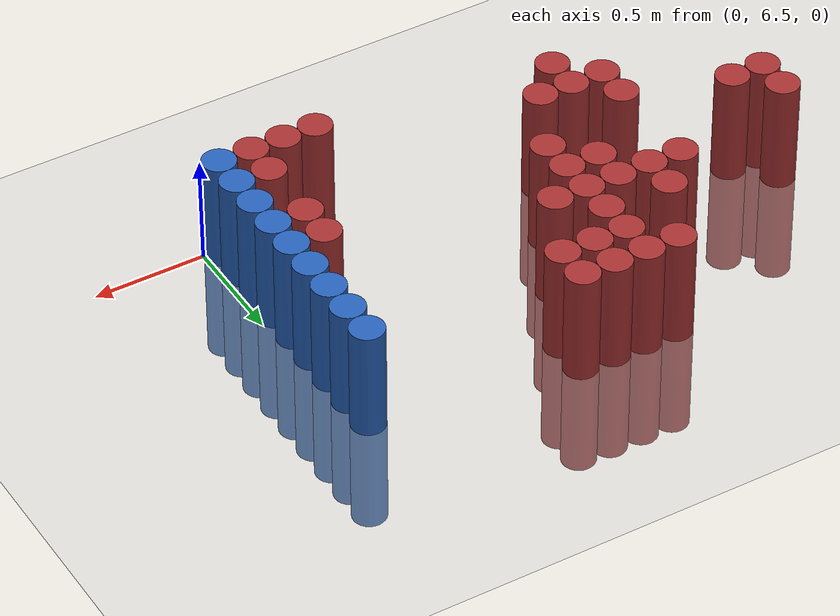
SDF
<sdf version="1.6">
 <world name="default">
  <model name="ground_plane">
   <static>1</static>
   <link name="link">
    <collision name="collision">
     <geometry><plane><normal>0 0 1</normal><size>100 100</size></plane></geometry>
     <surface><friction><ode><mu>100</mu><mu2>50</mu2></ode></friction></surface>
    </collision>
    <visual name="visual">
     <cast_shadows>0</cast_shadows>
     <geometry><plane><normal>0 0 1</normal><size>100 100</size></plane></geometry>
     <material>
      <script><uri>file://media/materials/scripts/gazebo.material</uri><name>Gazebo/Grey</name></script>
     </material>
    </visual>
   </link>
  </model>
  <model name="unit_cylinder_211">
   <static>1</static>
   <pose>-2.325000 7.125000 0.000000 0.000000 0.000000 0.000000</pose>
   <link name="link">
    <inertial>
     <mass>1</mass>
     <inertia><ixx>0.145833</ixx><ixy>0</ixy><ixz>0</ixz><iyy>0.145833</iyy><iyz>0</iyz><izz>0.125</izz></inertia>
    </inertial>
    <collision name="collision">
     <geometry><cylinder><radius>0.075000</radius><length>1</length></cylinder></geometry>
    </collision>
    <visual name="visual">
     <geometry><cylinder><radius>0.075000</radius><length>1</length></cylinder></geometry>
     <material>
      <ambient>0.648000 0.192000 0.192000 1</ambient>
      <diffuse>0.648000 0.192000 0.192000 1</diffuse>
     </material>
     <material>
      <script><name>Gazebo/Grey</name><uri>file://media/materials/scripts/gazebo.material</uri></script>
     </material>
    </visual>
    <sensor name="sensor_contact" type="contact"><contact><collision>collision</collision></contact></sensor>
   </link>
   <plugin filename="gz-sim-touchplugin-system" name="gz::sim::systems::TouchPlugin">
    <target>robot</target>
    <namespace>robot</namespace>
    <time>0.001</time>
    <enabled>true</enabled>
   </plugin>
  </model>
  <model name="unit_cylinder_212">
   <static>1</static>
   <pose>-2.325000 7.275000 0.000000 0.000000 0.000000 0.000000</pose>
   <link name="link">
    <inertial>
     <mass>1</mass>
     <inertia><ixx>0.145833</ixx><ixy>0</ixy><ixz>0</ixz><iyy>0.145833</iyy><iyz>0</iyz><izz>0.125</izz></inertia>
    </inertial>
    <collision name="collision">
     <geometry><cylinder><radius>0.075000</radius><length>1</length></cylinder></geometry>
    </collision>
    <visual name="visual">
     <geometry><cylinder><radius>0.075000</radius><length>1</length></cylinder></geometry>
     <material>
      <ambient>0.648000 0.192000 0.192000 1</ambient>
      <diffuse>0.648000 0.192000 0.192000 1</diffuse>
     </material>
     <material>
      <script><name>Gazebo/Grey</name><uri>file://media/materials/scripts/gazebo.material</uri></script>
     </material>
    </visual>
    <sensor name="sensor_contact" type="contact"><contact><collision>collision</collision></contact></sensor>
   </link>
   <plugin filename="gz-sim-touchplugin-system" name="gz::sim::systems::TouchPlugin">
    <target>robot</target>
    <namespace>robot</namespace>
    <time>0.001</time>
    <enabled>true</enabled>
   </plugin>
  </model>
  <model name="unit_cylinder_218">
   <static>1</static>
   <pose>-2.175000 7.125000 0.000000 0.000000 0.000000 0.000000</pose>
   <link name="link">
    <inertial>
     <mass>1</mass>
     <inertia><ixx>0.145833</ixx><ixy>0</ixy><ixz>0</ixz><iyy>0.145833</iyy><iyz>0</iyz><izz>0.125</izz></inertia>
    </inertial>
    <collision name="collision">
     <geometry><cylinder><radius>0.075000</radius><length>1</length></cylinder></geometry>
    </collision>
    <visual name="visual">
     <geometry><cylinder><radius>0.075000</radius><length>1</length></cylinder></geometry>
     <material>
      <ambient>0.648000 0.192000 0.192000 1</ambient>
      <diffuse>0.648000 0.192000 0.192000 1</diffuse>
     </material>
     <material>
      <script><name>Gazebo/Grey</name><uri>file://media/materials/scripts/gazebo.material</uri></script>
     </material>
    </visual>
    <sensor name="sensor_contact" type="contact"><contact><collision>collision</collision></contact></sensor>
   </link>
   <plugin filename="gz-sim-touchplugin-system" name="gz::sim::systems::TouchPlugin">
    <target>robot</target>
    <namespace>robot</namespace>
    <time>0.001</time>
    <enabled>true</enabled>
   </plugin>
  </model>
  <model name="unit_cylinder_234">
   <static>1</static>
   <pose>-1.725000 6.825000 0.000000 0.000000 0.000000 0.000000</pose>
   <link name="link">
    <inertial>
     <mass>1</mass>
     <inertia><ixx>0.145833</ixx><ixy>0</ixy><ixz>0</ixz><iyy>0.145833</iyy><iyz>0</iyz><izz>0.125</izz></inertia>
    </inertial>
    <collision name="collision">
     <geometry><cylinder><radius>0.075000</radius><length>1</length></cylinder></geometry>
    </collision>
    <visual name="visual">
     <geometry><cylinder><radius>0.075000</radius><length>1</length></cylinder></geometry>
     <material>
      <ambient>0.648000 0.192000 0.192000 1</ambient>
      <diffuse>0.648000 0.192000 0.192000 1</diffuse>
     </material>
     <material>
      <script><name>Gazebo/Grey</name><uri>file://media/materials/scripts/gazebo.material</uri></script>
     </material>
    </visual>
    <sensor name="sensor_contact" type="contact"><contact><collision>collision</collision></contact></sensor>
   </link>
   <plugin filename="gz-sim-touchplugin-system" name="gz::sim::systems::TouchPlugin">
    <target>robot</target>
    <namespace>robot</namespace>
    <time>0.001</time>
    <enabled>true</enabled>
   </plugin>
  </model>
  <model name="unit_cylinder_235">
   <static>1</static>
   <pose>-1.725000 6.975000 0.000000 0.000000 0.000000 0.000000</pose>
   <link name="link">
    <inertial>
     <mass>1</mass>
     <inertia><ixx>0.145833</ixx><ixy>0</ixy><ixz>0</ixz><iyy>0.145833</iyy><iyz>0</iyz><izz>0.125</izz></inertia>
    </inertial>
    <collision name="collision">
     <geometry><cylinder><radius>0.075000</radius><length>1</length></cylinder></geometry>
    </collision>
    <visual name="visual">
     <geometry><cylinder><radius>0.075000</radius><length>1</length></cylinder></geometry>
     <material>
      <ambient>0.648000 0.192000 0.192000 1</ambient>
      <diffuse>0.648000 0.192000 0.192000 1</diffuse>
     </material>
     <material>
      <script><name>Gazebo/Grey</name><uri>file://media/materials/scripts/gazebo.material</uri></script>
     </material>
    </visual>
    <sensor name="sensor_contact" type="contact"><contact><collision>collision</collision></contact></sensor>
   </link>
   <plugin filename="gz-sim-touchplugin-system" name="gz::sim::systems::TouchPlugin">
    <target>robot</target>
    <namespace>robot</namespace>
    <time>0.001</time>
    <enabled>true</enabled>
   </plugin>
  </model>
  <model name="unit_cylinder_236">
   <static>1</static>
   <pose>-1.725000 7.425000 0.000000 0.000000 0.000000 0.000000</pose>
   <link name="link">
    <inertial>
     <mass>1</mass>
     <inertia><ixx>0.145833</ixx><ixy>0</ixy><ixz>0</ixz><iyy>0.145833</iyy><iyz>0</iyz><izz>0.125</izz></inertia>
    </inertial>
    <collision name="collision">
     <geometry><cylinder><radius>0.075000</radius><length>1</length></cylinder></geometry>
    </collision>
    <visual name="visual">
     <geometry><cylinder><radius>0.075000</radius><length>1</length></cylinder></geometry>
     <material>
      <ambient>0.648000 0.192000 0.192000 1</ambient>
      <diffuse>0.648000 0.192000 0.192000 1</diffuse>
     </material>
     <material>
      <script><name>Gazebo/Grey</name><uri>file://media/materials/scripts/gazebo.material</uri></script>
     </material>
    </visual>
    <sensor name="sensor_contact" type="contact"><contact><collision>collision</collision></contact></sensor>
   </link>
   <plugin filename="gz-sim-touchplugin-system" name="gz::sim::systems::TouchPlugin">
    <target>robot</target>
    <namespace>robot</namespace>
    <time>0.001</time>
    <enabled>true</enabled>
   </plugin>
  </model>
  <model name="unit_cylinder_238">
   <static>1</static>
   <pose>-1.575000 6.675000 0.000000 0.000000 0.000000 0.000000</pose>
   <link name="link">
    <inertial>
     <mass>1</mass>
     <inertia><ixx>0.145833</ixx><ixy>0</ixy><ixz>0</ixz><iyy>0.145833</iyy><iyz>0</iyz><izz>0.125</izz></inertia>
    </inertial>
    <collision name="collision">
     <geometry><cylinder><radius>0.075000</radius><length>1</length></cylinder></geometry>
    </collision>
    <visual name="visual">
     <geometry><cylinder><radius>0.075000</radius><length>1</length></cylinder></geometry>
     <material>
      <ambient>0.648000 0.192000 0.192000 1</ambient>
      <diffuse>0.648000 0.192000 0.192000 1</diffuse>
     </material>
     <material>
      <script><name>Gazebo/Grey</name><uri>file://media/materials/scripts/gazebo.material</uri></script>
     </material>
    </visual>
    <sensor name="sensor_contact" type="contact"><contact><collision>collision</collision></contact></sensor>
   </link>
   <plugin filename="gz-sim-touchplugin-system" name="gz::sim::systems::TouchPlugin">
    <target>robot</target>
    <namespace>robot</namespace>
    <time>0.001</time>
    <enabled>true</enabled>
   </plugin>
  </model>
  <model name="unit_cylinder_239">
   <static>1</static>
   <pose>-1.575000 6.825000 0.000000 0.000000 0.000000 0.000000</pose>
   <link name="link">
    <inertial>
     <mass>1</mass>
     <inertia><ixx>0.145833</ixx><ixy>0</ixy><ixz>0</ixz><iyy>0.145833</iyy><iyz>0</iyz><izz>0.125</izz></inertia>
    </inertial>
    <collision name="collision">
     <geometry><cylinder><radius>0.075000</radius><length>1</length></cylinder></geometry>
    </collision>
    <visual name="visual">
     <geometry><cylinder><radius>0.075000</radius><length>1</length></cylinder></geometry>
     <material>
      <ambient>0.648000 0.192000 0.192000 1</ambient>
      <diffuse>0.648000 0.192000 0.192000 1</diffuse>
     </material>
     <material>
      <script><name>Gazebo/Grey</name><uri>file://media/materials/scripts/gazebo.material</uri></script>
     </material>
    </visual>
    <sensor name="sensor_contact" type="contact"><contact><collision>collision</collision></contact></sensor>
   </link>
   <plugin filename="gz-sim-touchplugin-system" name="gz::sim::systems::TouchPlugin">
    <target>robot</target>
    <namespace>robot</namespace>
    <time>0.001</time>
    <enabled>true</enabled>
   </plugin>
  </model>
  <model name="unit_cylinder_240">
   <static>1</static>
   <pose>-1.575000 7.425000 0.000000 0.000000 0.000000 0.000000</pose>
   <link name="link">
    <inertial>
     <mass>1</mass>
     <inertia><ixx>0.145833</ixx><ixy>0</ixy><ixz>0</ixz><iyy>0.145833</iyy><iyz>0</iyz><izz>0.125</izz></inertia>
    </inertial>
    <collision name="collision">
     <geometry><cylinder><radius>0.075000</radius><length>1</length></cylinder></geometry>
    </collision>
    <visual name="visual">
     <geometry><cylinder><radius>0.075000</radius><length>1</length></cylinder></geometry>
     <material>
      <ambient>0.648000 0.192000 0.192000 1</ambient>
      <diffuse>0.648000 0.192000 0.192000 1</diffuse>
     </material>
     <material>
      <script><name>Gazebo/Grey</name><uri>file://media/materials/scripts/gazebo.material</uri></script>
     </material>
    </visual>
    <sensor name="sensor_contact" type="contact"><contact><collision>collision</collision></contact></sensor>
   </link>
   <plugin filename="gz-sim-touchplugin-system" name="gz::sim::systems::TouchPlugin">
    <target>robot</target>
    <namespace>robot</namespace>
    <time>0.001</time>
    <enabled>true</enabled>
   </plugin>
  </model>
  <model name="unit_cylinder_241">
   <static>1</static>
   <pose>-1.575000 7.575000 0.000000 0.000000 0.000000 0.000000</pose>
   <link name="link">
    <inertial>
     <mass>1</mass>
     <inertia><ixx>0.145833</ixx><ixy>0</ixy><ixz>0</ixz><iyy>0.145833</iyy><iyz>0</iyz><izz>0.125</izz></inertia>
    </inertial>
    <collision name="collision">
     <geometry><cylinder><radius>0.075000</radius><length>1</length></cylinder></geometry>
    </collision>
    <visual name="visual">
     <geometry><cylinder><radius>0.075000</radius><length>1</length></cylinder></geometry>
     <material>
      <ambient>0.648000 0.192000 0.192000 1</ambient>
      <diffuse>0.648000 0.192000 0.192000 1</diffuse>
     </material>
     <material>
      <script><name>Gazebo/Grey</name><uri>file://media/materials/scripts/gazebo.material</uri></script>
     </material>
    </visual>
    <sensor name="sensor_contact" type="contact"><contact><collision>collision</collision></contact></sensor>
   </link>
   <plugin filename="gz-sim-touchplugin-system" name="gz::sim::systems::TouchPlugin">
    <target>robot</target>
    <namespace>robot</namespace>
    <time>0.001</time>
    <enabled>true</enabled>
   </plugin>
  </model>
  <model name="unit_cylinder_244">
   <static>1</static>
   <pose>-1.425000 6.825000 0.000000 0.000000 0.000000 0.000000</pose>
   <link name="link">
    <inertial>
     <mass>1</mass>
     <inertia><ixx>0.145833</ixx><ixy>0</ixy><ixz>0</ixz><iyy>0.145833</iyy><iyz>0</iyz><izz>0.125</izz></inertia>
    </inertial>
    <collision name="collision">
     <geometry><cylinder><radius>0.075000</radius><length>1</length></cylinder></geometry>
    </collision>
    <visual name="visual">
     <geometry><cylinder><radius>0.075000</radius><length>1</length></cylinder></geometry>
     <material>
      <ambient>0.648000 0.192000 0.192000 1</ambient>
      <diffuse>0.648000 0.192000 0.192000 1</diffuse>
     </material>
     <material>
      <script><name>Gazebo/Grey</name><uri>file://media/materials/scripts/gazebo.material</uri></script>
     </material>
    </visual>
    <sensor name="sensor_contact" type="contact"><contact><collision>collision</collision></contact></sensor>
   </link>
   <plugin filename="gz-sim-touchplugin-system" name="gz::sim::systems::TouchPlugin">
    <target>robot</target>
    <namespace>robot</namespace>
    <time>0.001</time>
    <enabled>true</enabled>
   </plugin>
  </model>
  <model name="unit_cylinder_245">
   <static>1</static>
   <pose>-1.425000 7.275000 0.000000 0.000000 0.000000 0.000000</pose>
   <link name="link">
    <inertial>
     <mass>1</mass>
     <inertia><ixx>0.145833</ixx><ixy>0</ixy><ixz>0</ixz><iyy>0.145833</iyy><iyz>0</iyz><izz>0.125</izz></inertia>
    </inertial>
    <collision name="collision">
     <geometry><cylinder><radius>0.075000</radius><length>1</length></cylinder></geometry>
    </collision>
    <visual name="visual">
     <geometry><cylinder><radius>0.075000</radius><length>1</length></cylinder></geometry>
     <material>
      <ambient>0.648000 0.192000 0.192000 1</ambient>
      <diffuse>0.648000 0.192000 0.192000 1</diffuse>
     </material>
     <material>
      <script><name>Gazebo/Grey</name><uri>file://media/materials/scripts/gazebo.material</uri></script>
     </material>
    </visual>
    <sensor name="sensor_contact" type="contact"><contact><collision>collision</collision></contact></sensor>
   </link>
   <plugin filename="gz-sim-touchplugin-system" name="gz::sim::systems::TouchPlugin">
    <target>robot</target>
    <namespace>robot</namespace>
    <time>0.001</time>
    <enabled>true</enabled>
   </plugin>
  </model>
  <model name="unit_cylinder_246">
   <static>1</static>
   <pose>-1.425000 7.425000 0.000000 0.000000 0.000000 0.000000</pose>
   <link name="link">
    <inertial>
     <mass>1</mass>
     <inertia><ixx>0.145833</ixx><ixy>0</ixy><ixz>0</ixz><iyy>0.145833</iyy><iyz>0</iyz><izz>0.125</izz></inertia>
    </inertial>
    <collision name="collision">
     <geometry><cylinder><radius>0.075000</radius><length>1</length></cylinder></geometry>
    </collision>
    <visual name="visual">
     <geometry><cylinder><radius>0.075000</radius><length>1</length></cylinder></geometry>
     <material>
      <ambient>0.648000 0.192000 0.192000 1</ambient>
      <diffuse>0.648000 0.192000 0.192000 1</diffuse>
     </material>
     <material>
      <script><name>Gazebo/Grey</name><uri>file://media/materials/scripts/gazebo.material</uri></script>
     </material>
    </visual>
    <sensor name="sensor_contact" type="contact"><contact><collision>collision</collision></contact></sensor>
   </link>
   <plugin filename="gz-sim-touchplugin-system" name="gz::sim::systems::TouchPlugin">
    <target>robot</target>
    <namespace>robot</namespace>
    <time>0.001</time>
    <enabled>true</enabled>
   </plugin>
  </model>
  <model name="unit_cylinder_247">
   <static>1</static>
   <pose>-1.425000 7.875000 0.000000 0.000000 0.000000 0.000000</pose>
   <link name="link">
    <inertial>
     <mass>1</mass>
     <inertia><ixx>0.145833</ixx><ixy>0</ixy><ixz>0</ixz><iyy>0.145833</iyy><iyz>0</iyz><izz>0.125</izz></inertia>
    </inertial>
    <collision name="collision">
     <geometry><cylinder><radius>0.075000</radius><length>1</length></cylinder></geometry>
    </collision>
    <visual name="visual">
     <geometry><cylinder><radius>0.075000</radius><length>1</length></cylinder></geometry>
     <material>
      <ambient>0.648000 0.192000 0.192000 1</ambient>
      <diffuse>0.648000 0.192000 0.192000 1</diffuse>
     </material>
     <material>
      <script><name>Gazebo/Grey</name><uri>file://media/materials/scripts/gazebo.material</uri></script>
     </material>
    </visual>
    <sensor name="sensor_contact" type="contact"><contact><collision>collision</collision></contact></sensor>
   </link>
   <plugin filename="gz-sim-touchplugin-system" name="gz::sim::systems::TouchPlugin">
    <target>robot</target>
    <namespace>robot</namespace>
    <time>0.001</time>
    <enabled>true</enabled>
   </plugin>
  </model>
  <model name="unit_cylinder_250">
   <static>1</static>
   <pose>-1.275000 7.125000 0.000000 0.000000 0.000000 0.000000</pose>
   <link name="link">
    <inertial>
     <mass>1</mass>
     <inertia><ixx>0.145833</ixx><ixy>0</ixy><ixz>0</ixz><iyy>0.145833</iyy><iyz>0</iyz><izz>0.125</izz></inertia>
    </inertial>
    <collision name="collision">
     <geometry><cylinder><radius>0.075000</radius><length>1</length></cylinder></geometry>
    </collision>
    <visual name="visual">
     <geometry><cylinder><radius>0.075000</radius><length>1</length></cylinder></geometry>
     <material>
      <ambient>0.648000 0.192000 0.192000 1</ambient>
      <diffuse>0.648000 0.192000 0.192000 1</diffuse>
     </material>
     <material>
      <script><name>Gazebo/Grey</name><uri>file://media/materials/scripts/gazebo.material</uri></script>
     </material>
    </visual>
    <sensor name="sensor_contact" type="contact"><contact><collision>collision</collision></contact></sensor>
   </link>
   <plugin filename="gz-sim-touchplugin-system" name="gz::sim::systems::TouchPlugin">
    <target>robot</target>
    <namespace>robot</namespace>
    <time>0.001</time>
    <enabled>true</enabled>
   </plugin>
  </model>
  <model name="unit_cylinder_251">
   <static>1</static>
   <pose>-1.275000 7.275000 0.000000 0.000000 0.000000 0.000000</pose>
   <link name="link">
    <inertial>
     <mass>1</mass>
     <inertia><ixx>0.145833</ixx><ixy>0</ixy><ixz>0</ixz><iyy>0.145833</iyy><iyz>0</iyz><izz>0.125</izz></inertia>
    </inertial>
    <collision name="collision">
     <geometry><cylinder><radius>0.075000</radius><length>1</length></cylinder></geometry>
    </collision>
    <visual name="visual">
     <geometry><cylinder><radius>0.075000</radius><length>1</length></cylinder></geometry>
     <material>
      <ambient>0.648000 0.192000 0.192000 1</ambient>
      <diffuse>0.648000 0.192000 0.192000 1</diffuse>
     </material>
     <material>
      <script><name>Gazebo/Grey</name><uri>file://media/materials/scripts/gazebo.material</uri></script>
     </material>
    </visual>
    <sensor name="sensor_contact" type="contact"><contact><collision>collision</collision></contact></sensor>
   </link>
   <plugin filename="gz-sim-touchplugin-system" name="gz::sim::systems::TouchPlugin">
    <target>robot</target>
    <namespace>robot</namespace>
    <time>0.001</time>
    <enabled>true</enabled>
   </plugin>
  </model>
  <model name="unit_cylinder_252">
   <static>1</static>
   <pose>-1.275000 7.425000 0.000000 0.000000 0.000000 0.000000</pose>
   <link name="link">
    <inertial>
     <mass>1</mass>
     <inertia><ixx>0.145833</ixx><ixy>0</ixy><ixz>0</ixz><iyy>0.145833</iyy><iyz>0</iyz><izz>0.125</izz></inertia>
    </inertial>
    <collision name="collision">
     <geometry><cylinder><radius>0.075000</radius><length>1</length></cylinder></geometry>
    </collision>
    <visual name="visual">
     <geometry><cylinder><radius>0.075000</radius><length>1</length></cylinder></geometry>
     <material>
      <ambient>0.648000 0.192000 0.192000 1</ambient>
      <diffuse>0.648000 0.192000 0.192000 1</diffuse>
     </material>
     <material>
      <script><name>Gazebo/Grey</name><uri>file://media/materials/scripts/gazebo.material</uri></script>
     </material>
    </visual>
    <sensor name="sensor_contact" type="contact"><contact><collision>collision</collision></contact></sensor>
   </link>
   <plugin filename="gz-sim-touchplugin-system" name="gz::sim::systems::TouchPlugin">
    <target>robot</target>
    <namespace>robot</namespace>
    <time>0.001</time>
    <enabled>true</enabled>
   </plugin>
  </model>
  <model name="unit_cylinder_253">
   <static>1</static>
   <pose>-1.275000 7.575000 0.000000 0.000000 0.000000 0.000000</pose>
   <link name="link">
    <inertial>
     <mass>1</mass>
     <inertia><ixx>0.145833</ixx><ixy>0</ixy><ixz>0</ixz><iyy>0.145833</iyy><iyz>0</iyz><izz>0.125</izz></inertia>
    </inertial>
    <collision name="collision">
     <geometry><cylinder><radius>0.075000</radius><length>1</length></cylinder></geometry>
    </collision>
    <visual name="visual">
     <geometry><cylinder><radius>0.075000</radius><length>1</length></cylinder></geometry>
     <material>
      <ambient>0.648000 0.192000 0.192000 1</ambient>
      <diffuse>0.648000 0.192000 0.192000 1</diffuse>
     </material>
     <material>
      <script><name>Gazebo/Grey</name><uri>file://media/materials/scripts/gazebo.material</uri></script>
     </material>
    </visual>
    <sensor name="sensor_contact" type="contact"><contact><collision>collision</collision></contact></sensor>
   </link>
   <plugin filename="gz-sim-touchplugin-system" name="gz::sim::systems::TouchPlugin">
    <target>robot</target>
    <namespace>robot</namespace>
    <time>0.001</time>
    <enabled>true</enabled>
   </plugin>
  </model>
  <model name="unit_cylinder_254">
   <static>1</static>
   <pose>-1.275000 7.725000 0.000000 0.000000 0.000000 0.000000</pose>
   <link name="link">
    <inertial>
     <mass>1</mass>
     <inertia><ixx>0.145833</ixx><ixy>0</ixy><ixz>0</ixz><iyy>0.145833</iyy><iyz>0</iyz><izz>0.125</izz></inertia>
    </inertial>
    <collision name="collision">
     <geometry><cylinder><radius>0.075000</radius><length>1</length></cylinder></geometry>
    </collision>
    <visual name="visual">
     <geometry><cylinder><radius>0.075000</radius><length>1</length></cylinder></geometry>
     <material>
      <ambient>0.648000 0.192000 0.192000 1</ambient>
      <diffuse>0.648000 0.192000 0.192000 1</diffuse>
     </material>
     <material>
      <script><name>Gazebo/Grey</name><uri>file://media/materials/scripts/gazebo.material</uri></script>
     </material>
    </visual>
    <sensor name="sensor_contact" type="contact"><contact><collision>collision</collision></contact></sensor>
   </link>
   <plugin filename="gz-sim-touchplugin-system" name="gz::sim::systems::TouchPlugin">
    <target>robot</target>
    <namespace>robot</namespace>
    <time>0.001</time>
    <enabled>true</enabled>
   </plugin>
  </model>
  <model name="unit_cylinder_255">
   <static>1</static>
   <pose>-1.275000 7.875000 0.000000 0.000000 0.000000 0.000000</pose>
   <link name="link">
    <inertial>
     <mass>1</mass>
     <inertia><ixx>0.145833</ixx><ixy>0</ixy><ixz>0</ixz><iyy>0.145833</iyy><iyz>0</iyz><izz>0.125</izz></inertia>
    </inertial>
    <collision name="collision">
     <geometry><cylinder><radius>0.075000</radius><length>1</length></cylinder></geometry>
    </collision>
    <visual name="visual">
     <geometry><cylinder><radius>0.075000</radius><length>1</length></cylinder></geometry>
     <material>
      <ambient>0.648000 0.192000 0.192000 1</ambient>
      <diffuse>0.648000 0.192000 0.192000 1</diffuse>
     </material>
     <material>
      <script><name>Gazebo/Grey</name><uri>file://media/materials/scripts/gazebo.material</uri></script>
     </material>
    </visual>
    <sensor name="sensor_contact" type="contact"><contact><collision>collision</collision></contact></sensor>
   </link>
   <plugin filename="gz-sim-touchplugin-system" name="gz::sim::systems::TouchPlugin">
    <target>robot</target>
    <namespace>robot</namespace>
    <time>0.001</time>
    <enabled>true</enabled>
   </plugin>
  </model>
  <model name="unit_cylinder_257">
   <static>1</static>
   <pose>-1.125000 7.425000 0.000000 0.000000 0.000000 0.000000</pose>
   <link name="link">
    <inertial>
     <mass>1</mass>
     <inertia><ixx>0.145833</ixx><ixy>0</ixy><ixz>0</ixz><iyy>0.145833</iyy><iyz>0</iyz><izz>0.125</izz></inertia>
    </inertial>
    <collision name="collision">
     <geometry><cylinder><radius>0.075000</radius><length>1</length></cylinder></geometry>
    </collision>
    <visual name="visual">
     <geometry><cylinder><radius>0.075000</radius><length>1</length></cylinder></geometry>
     <material>
      <ambient>0.648000 0.192000 0.192000 1</ambient>
      <diffuse>0.648000 0.192000 0.192000 1</diffuse>
     </material>
     <material>
      <script><name>Gazebo/Grey</name><uri>file://media/materials/scripts/gazebo.material</uri></script>
     </material>
    </visual>
    <sensor name="sensor_contact" type="contact"><contact><collision>collision</collision></contact></sensor>
   </link>
   <plugin filename="gz-sim-touchplugin-system" name="gz::sim::systems::TouchPlugin">
    <target>robot</target>
    <namespace>robot</namespace>
    <time>0.001</time>
    <enabled>true</enabled>
   </plugin>
  </model>
  <model name="unit_cylinder_258">
   <static>1</static>
   <pose>-1.125000 7.725000 0.000000 0.000000 0.000000 0.000000</pose>
   <link name="link">
    <inertial>
     <mass>1</mass>
     <inertia><ixx>0.145833</ixx><ixy>0</ixy><ixz>0</ixz><iyy>0.145833</iyy><iyz>0</iyz><izz>0.125</izz></inertia>
    </inertial>
    <collision name="collision">
     <geometry><cylinder><radius>0.075000</radius><length>1</length></cylinder></geometry>
    </collision>
    <visual name="visual">
     <geometry><cylinder><radius>0.075000</radius><length>1</length></cylinder></geometry>
     <material>
      <ambient>0.648000 0.192000 0.192000 1</ambient>
      <diffuse>0.648000 0.192000 0.192000 1</diffuse>
     </material>
     <material>
      <script><name>Gazebo/Grey</name><uri>file://media/materials/scripts/gazebo.material</uri></script>
     </material>
    </visual>
    <sensor name="sensor_contact" type="contact"><contact><collision>collision</collision></contact></sensor>
   </link>
   <plugin filename="gz-sim-touchplugin-system" name="gz::sim::systems::TouchPlugin">
    <target>robot</target>
    <namespace>robot</namespace>
    <time>0.001</time>
    <enabled>true</enabled>
   </plugin>
  </model>
  <model name="unit_cylinder_259">
   <static>1</static>
   <pose>-1.125000 7.875000 0.000000 0.000000 0.000000 0.000000</pose>
   <link name="link">
    <inertial>
     <mass>1</mass>
     <inertia><ixx>0.145833</ixx><ixy>0</ixy><ixz>0</ixz><iyy>0.145833</iyy><iyz>0</iyz><izz>0.125</izz></inertia>
    </inertial>
    <collision name="collision">
     <geometry><cylinder><radius>0.075000</radius><length>1</length></cylinder></geometry>
    </collision>
    <visual name="visual">
     <geometry><cylinder><radius>0.075000</radius><length>1</length></cylinder></geometry>
     <material>
      <ambient>0.648000 0.192000 0.192000 1</ambient>
      <diffuse>0.648000 0.192000 0.192000 1</diffuse>
     </material>
     <material>
      <script><name>Gazebo/Grey</name><uri>file://media/materials/scripts/gazebo.material</uri></script>
     </material>
    </visual>
    <sensor name="sensor_contact" type="contact"><contact><collision>collision</collision></contact></sensor>
   </link>
   <plugin filename="gz-sim-touchplugin-system" name="gz::sim::systems::TouchPlugin">
    <target>robot</target>
    <namespace>robot</namespace>
    <time>0.001</time>
    <enabled>true</enabled>
   </plugin>
  </model>
  <model name="unit_cylinder_261">
   <static>1</static>
   <pose>-0.975000 7.725000 0.000000 0.000000 0.000000 0.000000</pose>
   <link name="link">
    <inertial>
     <mass>1</mass>
     <inertia><ixx>0.145833</ixx><ixy>0</ixy><ixz>0</ixz><iyy>0.145833</iyy><iyz>0</iyz><izz>0.125</izz></inertia>
    </inertial>
    <collision name="collision">
     <geometry><cylinder><radius>0.075000</radius><length>1</length></cylinder></geometry>
    </collision>
    <visual name="visual">
     <geometry><cylinder><radius>0.075000</radius><length>1</length></cylinder></geometry>
     <material>
      <ambient>0.648000 0.192000 0.192000 1</ambient>
      <diffuse>0.648000 0.192000 0.192000 1</diffuse>
     </material>
     <material>
      <script><name>Gazebo/Grey</name><uri>file://media/materials/scripts/gazebo.material</uri></script>
     </material>
    </visual>
    <sensor name="sensor_contact" type="contact"><contact><collision>collision</collision></contact></sensor>
   </link>
   <plugin filename="gz-sim-touchplugin-system" name="gz::sim::systems::TouchPlugin">
    <target>robot</target>
    <namespace>robot</namespace>
    <time>0.001</time>
    <enabled>true</enabled>
   </plugin>
  </model>
  <model name="unit_cylinder_262">
   <static>1</static>
   <pose>-0.975000 7.875000 0.000000 0.000000 0.000000 0.000000</pose>
   <link name="link">
    <inertial>
     <mass>1</mass>
     <inertia><ixx>0.145833</ixx><ixy>0</ixy><ixz>0</ixz><iyy>0.145833</iyy><iyz>0</iyz><izz>0.125</izz></inertia>
    </inertial>
    <collision name="collision">
     <geometry><cylinder><radius>0.075000</radius><length>1</length></cylinder></geometry>
    </collision>
    <visual name="visual">
     <geometry><cylinder><radius>0.075000</radius><length>1</length></cylinder></geometry>
     <material>
      <ambient>0.648000 0.192000 0.192000 1</ambient>
      <diffuse>0.648000 0.192000 0.192000 1</diffuse>
     </material>
     <material>
      <script><name>Gazebo/Grey</name><uri>file://media/materials/scripts/gazebo.material</uri></script>
     </material>
    </visual>
    <sensor name="sensor_contact" type="contact"><contact><collision>collision</collision></contact></sensor>
   </link>
   <plugin filename="gz-sim-touchplugin-system" name="gz::sim::systems::TouchPlugin">
    <target>robot</target>
    <namespace>robot</namespace>
    <time>0.001</time>
    <enabled>true</enabled>
   </plugin>
  </model>
  <model name="unit_cylinder_264">
   <static>1</static>
   <pose>-0.525000 6.525000 0.000000 0.000000 0.000000 0.000000</pose>
   <link name="link">
    <inertial>
     <mass>1</mass>
     <inertia><ixx>0.145833</ixx><ixy>0</ixy><ixz>0</ixz><iyy>0.145833</iyy><iyz>0</iyz><izz>0.125</izz></inertia>
    </inertial>
    <collision name="collision">
     <geometry><cylinder><radius>0.075000</radius><length>1</length></cylinder></geometry>
    </collision>
    <visual name="visual">
     <geometry><cylinder><radius>0.075000</radius><length>1</length></cylinder></geometry>
     <material>
      <ambient>0.648000 0.192000 0.192000 1</ambient>
      <diffuse>0.648000 0.192000 0.192000 1</diffuse>
     </material>
     <material>
      <script><name>Gazebo/Grey</name><uri>file://media/materials/scripts/gazebo.material</uri></script>
     </material>
    </visual>
    <sensor name="sensor_contact" type="contact"><contact><collision>collision</collision></contact></sensor>
   </link>
   <plugin filename="gz-sim-touchplugin-system" name="gz::sim::systems::TouchPlugin">
    <target>robot</target>
    <namespace>robot</namespace>
    <time>0.001</time>
    <enabled>true</enabled>
   </plugin>
  </model>
  <model name="unit_cylinder_271">
   <static>1</static>
   <pose>-0.375000 6.525000 0.000000 0.000000 0.000000 0.000000</pose>
   <link name="link">
    <inertial>
     <mass>1</mass>
     <inertia><ixx>0.145833</ixx><ixy>0</ixy><ixz>0</ixz><iyy>0.145833</iyy><iyz>0</iyz><izz>0.125</izz></inertia>
    </inertial>
    <collision name="collision">
     <geometry><cylinder><radius>0.075000</radius><length>1</length></cylinder></geometry>
    </collision>
    <visual name="visual">
     <geometry><cylinder><radius>0.075000</radius><length>1</length></cylinder></geometry>
     <material>
      <ambient>0.648000 0.192000 0.192000 1</ambient>
      <diffuse>0.648000 0.192000 0.192000 1</diffuse>
     </material>
     <material>
      <script><name>Gazebo/Grey</name><uri>file://media/materials/scripts/gazebo.material</uri></script>
     </material>
    </visual>
    <sensor name="sensor_contact" type="contact"><contact><collision>collision</collision></contact></sensor>
   </link>
   <plugin filename="gz-sim-touchplugin-system" name="gz::sim::systems::TouchPlugin">
    <target>robot</target>
    <namespace>robot</namespace>
    <time>0.001</time>
    <enabled>true</enabled>
   </plugin>
  </model>
  <model name="unit_cylinder_283">
   <static>1</static>
   <pose>-0.225000 6.525000 0.000000 0.000000 0.000000 0.000000</pose>
   <link name="link">
    <inertial>
     <mass>1</mass>
     <inertia><ixx>0.145833</ixx><ixy>0</ixy><ixz>0</ixz><iyy>0.145833</iyy><iyz>0</iyz><izz>0.125</izz></inertia>
    </inertial>
    <collision name="collision">
     <geometry><cylinder><radius>0.075000</radius><length>1</length></cylinder></geometry>
    </collision>
    <visual name="visual">
     <geometry><cylinder><radius>0.075000</radius><length>1</length></cylinder></geometry>
     <material>
      <ambient>0.648000 0.192000 0.192000 1</ambient>
      <diffuse>0.648000 0.192000 0.192000 1</diffuse>
     </material>
     <material>
      <script><name>Gazebo/Grey</name><uri>file://media/materials/scripts/gazebo.material</uri></script>
     </material>
    </visual>
    <sensor name="sensor_contact" type="contact"><contact><collision>collision</collision></contact></sensor>
   </link>
   <plugin filename="gz-sim-touchplugin-system" name="gz::sim::systems::TouchPlugin">
    <target>robot</target>
    <namespace>robot</namespace>
    <time>0.001</time>
    <enabled>true</enabled>
   </plugin>
  </model>
  <model name="unit_cylinder_284">
   <static>1</static>
   <pose>-0.225000 6.675000 0.000000 0.000000 0.000000 0.000000</pose>
   <link name="link">
    <inertial>
     <mass>1</mass>
     <inertia><ixx>0.145833</ixx><ixy>0</ixy><ixz>0</ixz><iyy>0.145833</iyy><iyz>0</iyz><izz>0.125</izz></inertia>
    </inertial>
    <collision name="collision">
     <geometry><cylinder><radius>0.075000</radius><length>1</length></cylinder></geometry>
    </collision>
    <visual name="visual">
     <geometry><cylinder><radius>0.075000</radius><length>1</length></cylinder></geometry>
     <material>
      <ambient>0.648000 0.192000 0.192000 1</ambient>
      <diffuse>0.648000 0.192000 0.192000 1</diffuse>
     </material>
     <material>
      <script><name>Gazebo/Grey</name><uri>file://media/materials/scripts/gazebo.material</uri></script>
     </material>
    </visual>
    <sensor name="sensor_contact" type="contact"><contact><collision>collision</collision></contact></sensor>
   </link>
   <plugin filename="gz-sim-touchplugin-system" name="gz::sim::systems::TouchPlugin">
    <target>robot</target>
    <namespace>robot</namespace>
    <time>0.001</time>
    <enabled>true</enabled>
   </plugin>
  </model>
  <model name="unit_cylinder_285">
   <static>1</static>
   <pose>-0.225000 6.975000 0.000000 0.000000 0.000000 0.000000</pose>
   <link name="link">
    <inertial>
     <mass>1</mass>
     <inertia><ixx>0.145833</ixx><ixy>0</ixy><ixz>0</ixz><iyy>0.145833</iyy><iyz>0</iyz><izz>0.125</izz></inertia>
    </inertial>
    <collision name="collision">
     <geometry><cylinder><radius>0.075000</radius><length>1</length></cylinder></geometry>
    </collision>
    <visual name="visual">
     <geometry><cylinder><radius>0.075000</radius><length>1</length></cylinder></geometry>
     <material>
      <ambient>0.648000 0.192000 0.192000 1</ambient>
      <diffuse>0.648000 0.192000 0.192000 1</diffuse>
     </material>
     <material>
      <script><name>Gazebo/Grey</name><uri>file://media/materials/scripts/gazebo.material</uri></script>
     </material>
    </visual>
    <sensor name="sensor_contact" type="contact"><contact><collision>collision</collision></contact></sensor>
   </link>
   <plugin filename="gz-sim-touchplugin-system" name="gz::sim::systems::TouchPlugin">
    <target>robot</target>
    <namespace>robot</namespace>
    <time>0.001</time>
    <enabled>true</enabled>
   </plugin>
  </model>
  <model name="unit_cylinder_286">
   <static>1</static>
   <pose>-0.225000 7.125000 0.000000 0.000000 0.000000 0.000000</pose>
   <link name="link">
    <inertial>
     <mass>1</mass>
     <inertia><ixx>0.145833</ixx><ixy>0</ixy><ixz>0</ixz><iyy>0.145833</iyy><iyz>0</iyz><izz>0.125</izz></inertia>
    </inertial>
    <collision name="collision">
     <geometry><cylinder><radius>0.075000</radius><length>1</length></cylinder></geometry>
    </collision>
    <visual name="visual">
     <geometry><cylinder><radius>0.075000</radius><length>1</length></cylinder></geometry>
     <material>
      <ambient>0.648000 0.192000 0.192000 1</ambient>
      <diffuse>0.648000 0.192000 0.192000 1</diffuse>
     </material>
     <material>
      <script><name>Gazebo/Grey</name><uri>file://media/materials/scripts/gazebo.material</uri></script>
     </material>
    </visual>
    <sensor name="sensor_contact" type="contact"><contact><collision>collision</collision></contact></sensor>
   </link>
   <plugin filename="gz-sim-touchplugin-system" name="gz::sim::systems::TouchPlugin">
    <target>robot</target>
    <namespace>robot</namespace>
    <time>0.001</time>
    <enabled>true</enabled>
   </plugin>
  </model>
  <model name="unit_cylinder_304">
   <static>1</static>
   <pose>-0.075000 6.525000 0.000000 0.000000 0.000000 0.000000</pose>
   <link name="link">
    <inertial>
     <mass>1</mass>
     <inertia><ixx>0.145833</ixx><ixy>0</ixy><ixz>0</ixz><iyy>0.145833</iyy><iyz>0</iyz><izz>0.125</izz></inertia>
    </inertial>
    <collision name="collision">
     <geometry><cylinder><radius>0.075000</radius><length>1</length></cylinder></geometry>
    </collision>
    <visual name="visual">
     <geometry><cylinder><radius>0.075000</radius><length>1</length></cylinder></geometry>
     <material>
      <ambient>0.152000 0.379000 0.720000 1</ambient>
      <diffuse>0.152000 0.379000 0.720000 1</diffuse>
     </material>
     <material>
      <script><name>Gazebo/Grey</name><uri>file://media/materials/scripts/gazebo.material</uri></script>
     </material>
    </visual>
    <sensor name="sensor_contact" type="contact"><contact><collision>collision</collision></contact></sensor>
   </link>
   <plugin filename="gz-sim-touchplugin-system" name="gz::sim::systems::TouchPlugin">
    <target>robot</target>
    <namespace>robot</namespace>
    <time>0.001</time>
    <enabled>true</enabled>
   </plugin>
  </model>
  <model name="unit_cylinder_305">
   <static>1</static>
   <pose>-0.075000 6.675000 0.000000 0.000000 0.000000 0.000000</pose>
   <link name="link">
    <inertial>
     <mass>1</mass>
     <inertia><ixx>0.145833</ixx><ixy>0</ixy><ixz>0</ixz><iyy>0.145833</iyy><iyz>0</iyz><izz>0.125</izz></inertia>
    </inertial>
    <collision name="collision">
     <geometry><cylinder><radius>0.075000</radius><length>1</length></cylinder></geometry>
    </collision>
    <visual name="visual">
     <geometry><cylinder><radius>0.075000</radius><length>1</length></cylinder></geometry>
     <material>
      <ambient>0.152000 0.379000 0.720000 1</ambient>
      <diffuse>0.152000 0.379000 0.720000 1</diffuse>
     </material>
     <material>
      <script><name>Gazebo/Grey</name><uri>file://media/materials/scripts/gazebo.material</uri></script>
     </material>
    </visual>
    <sensor name="sensor_contact" type="contact"><contact><collision>collision</collision></contact></sensor>
   </link>
   <plugin filename="gz-sim-touchplugin-system" name="gz::sim::systems::TouchPlugin">
    <target>robot</target>
    <namespace>robot</namespace>
    <time>0.001</time>
    <enabled>true</enabled>
   </plugin>
  </model>
  <model name="unit_cylinder_306">
   <static>1</static>
   <pose>-0.075000 6.825000 0.000000 0.000000 0.000000 0.000000</pose>
   <link name="link">
    <inertial>
     <mass>1</mass>
     <inertia><ixx>0.145833</ixx><ixy>0</ixy><ixz>0</ixz><iyy>0.145833</iyy><iyz>0</iyz><izz>0.125</izz></inertia>
    </inertial>
    <collision name="collision">
     <geometry><cylinder><radius>0.075000</radius><length>1</length></cylinder></geometry>
    </collision>
    <visual name="visual">
     <geometry><cylinder><radius>0.075000</radius><length>1</length></cylinder></geometry>
     <material>
      <ambient>0.152000 0.379000 0.720000 1</ambient>
      <diffuse>0.152000 0.379000 0.720000 1</diffuse>
     </material>
     <material>
      <script><name>Gazebo/Grey</name><uri>file://media/materials/scripts/gazebo.material</uri></script>
     </material>
    </visual>
    <sensor name="sensor_contact" type="contact"><contact><collision>collision</collision></contact></sensor>
   </link>
   <plugin filename="gz-sim-touchplugin-system" name="gz::sim::systems::TouchPlugin">
    <target>robot</target>
    <namespace>robot</namespace>
    <time>0.001</time>
    <enabled>true</enabled>
   </plugin>
  </model>
  <model name="unit_cylinder_307">
   <static>1</static>
   <pose>-0.075000 6.975000 0.000000 0.000000 0.000000 0.000000</pose>
   <link name="link">
    <inertial>
     <mass>1</mass>
     <inertia><ixx>0.145833</ixx><ixy>0</ixy><ixz>0</ixz><iyy>0.145833</iyy><iyz>0</iyz><izz>0.125</izz></inertia>
    </inertial>
    <collision name="collision">
     <geometry><cylinder><radius>0.075000</radius><length>1</length></cylinder></geometry>
    </collision>
    <visual name="visual">
     <geometry><cylinder><radius>0.075000</radius><length>1</length></cylinder></geometry>
     <material>
      <ambient>0.152000 0.379000 0.720000 1</ambient>
      <diffuse>0.152000 0.379000 0.720000 1</diffuse>
     </material>
     <material>
      <script><name>Gazebo/Grey</name><uri>file://media/materials/scripts/gazebo.material</uri></script>
     </material>
    </visual>
    <sensor name="sensor_contact" type="contact"><contact><collision>collision</collision></contact></sensor>
   </link>
   <plugin filename="gz-sim-touchplugin-system" name="gz::sim::systems::TouchPlugin">
    <target>robot</target>
    <namespace>robot</namespace>
    <time>0.001</time>
    <enabled>true</enabled>
   </plugin>
  </model>
  <model name="unit_cylinder_308">
   <static>1</static>
   <pose>-0.075000 7.125000 0.000000 0.000000 0.000000 0.000000</pose>
   <link name="link">
    <inertial>
     <mass>1</mass>
     <inertia><ixx>0.145833</ixx><ixy>0</ixy><ixz>0</ixz><iyy>0.145833</iyy><iyz>0</iyz><izz>0.125</izz></inertia>
    </inertial>
    <collision name="collision">
     <geometry><cylinder><radius>0.075000</radius><length>1</length></cylinder></geometry>
    </collision>
    <visual name="visual">
     <geometry><cylinder><radius>0.075000</radius><length>1</length></cylinder></geometry>
     <material>
      <ambient>0.152000 0.379000 0.720000 1</ambient>
      <diffuse>0.152000 0.379000 0.720000 1</diffuse>
     </material>
     <material>
      <script><name>Gazebo/Grey</name><uri>file://media/materials/scripts/gazebo.material</uri></script>
     </material>
    </visual>
    <sensor name="sensor_contact" type="contact"><contact><collision>collision</collision></contact></sensor>
   </link>
   <plugin filename="gz-sim-touchplugin-system" name="gz::sim::systems::TouchPlugin">
    <target>robot</target>
    <namespace>robot</namespace>
    <time>0.001</time>
    <enabled>true</enabled>
   </plugin>
  </model>
  <model name="unit_cylinder_309">
   <static>1</static>
   <pose>-0.075000 7.275000 0.000000 0.000000 0.000000 0.000000</pose>
   <link name="link">
    <inertial>
     <mass>1</mass>
     <inertia><ixx>0.145833</ixx><ixy>0</ixy><ixz>0</ixz><iyy>0.145833</iyy><iyz>0</iyz><izz>0.125</izz></inertia>
    </inertial>
    <collision name="collision">
     <geometry><cylinder><radius>0.075000</radius><length>1</length></cylinder></geometry>
    </collision>
    <visual name="visual">
     <geometry><cylinder><radius>0.075000</radius><length>1</length></cylinder></geometry>
     <material>
      <ambient>0.152000 0.379000 0.720000 1</ambient>
      <diffuse>0.152000 0.379000 0.720000 1</diffuse>
     </material>
     <material>
      <script><name>Gazebo/Grey</name><uri>file://media/materials/scripts/gazebo.material</uri></script>
     </material>
    </visual>
    <sensor name="sensor_contact" type="contact"><contact><collision>collision</collision></contact></sensor>
   </link>
   <plugin filename="gz-sim-touchplugin-system" name="gz::sim::systems::TouchPlugin">
    <target>robot</target>
    <namespace>robot</namespace>
    <time>0.001</time>
    <enabled>true</enabled>
   </plugin>
  </model>
  <model name="unit_cylinder_310">
   <static>1</static>
   <pose>-0.075000 7.425000 0.000000 0.000000 0.000000 0.000000</pose>
   <link name="link">
    <inertial>
     <mass>1</mass>
     <inertia><ixx>0.145833</ixx><ixy>0</ixy><ixz>0</ixz><iyy>0.145833</iyy><iyz>0</iyz><izz>0.125</izz></inertia>
    </inertial>
    <collision name="collision">
     <geometry><cylinder><radius>0.075000</radius><length>1</length></cylinder></geometry>
    </collision>
    <visual name="visual">
     <geometry><cylinder><radius>0.075000</radius><length>1</length></cylinder></geometry>
     <material>
      <ambient>0.152000 0.379000 0.720000 1</ambient>
      <diffuse>0.152000 0.379000 0.720000 1</diffuse>
     </material>
     <material>
      <script><name>Gazebo/Grey</name><uri>file://media/materials/scripts/gazebo.material</uri></script>
     </material>
    </visual>
    <sensor name="sensor_contact" type="contact"><contact><collision>collision</collision></contact></sensor>
   </link>
   <plugin filename="gz-sim-touchplugin-system" name="gz::sim::systems::TouchPlugin">
    <target>robot</target>
    <namespace>robot</namespace>
    <time>0.001</time>
    <enabled>true</enabled>
   </plugin>
  </model>
  <model name="unit_cylinder_311">
   <static>1</static>
   <pose>-0.075000 7.575000 0.000000 0.000000 0.000000 0.000000</pose>
   <link name="link">
    <inertial>
     <mass>1</mass>
     <inertia><ixx>0.145833</ixx><ixy>0</ixy><ixz>0</ixz><iyy>0.145833</iyy><iyz>0</iyz><izz>0.125</izz></inertia>
    </inertial>
    <collision name="collision">
     <geometry><cylinder><radius>0.075000</radius><length>1</length></cylinder></geometry>
    </collision>
    <visual name="visual">
     <geometry><cylinder><radius>0.075000</radius><length>1</length></cylinder></geometry>
     <material>
      <ambient>0.152000 0.379000 0.720000 1</ambient>
      <diffuse>0.152000 0.379000 0.720000 1</diffuse>
     </material>
     <material>
      <script><name>Gazebo/Grey</name><uri>file://media/materials/scripts/gazebo.material</uri></script>
     </material>
    </visual>
    <sensor name="sensor_contact" type="contact"><contact><collision>collision</collision></contact></sensor>
   </link>
   <plugin filename="gz-sim-touchplugin-system" name="gz::sim::systems::TouchPlugin">
    <target>robot</target>
    <namespace>robot</namespace>
    <time>0.001</time>
    <enabled>true</enabled>
   </plugin>
  </model>
  <model name="unit_cylinder_312">
   <static>1</static>
   <pose>-0.075000 7.725000 0.000000 0.000000 0.000000 0.000000</pose>
   <link name="link">
    <inertial>
     <mass>1</mass>
     <inertia><ixx>0.145833</ixx><ixy>0</ixy><ixz>0</ixz><iyy>0.145833</iyy><iyz>0</iyz><izz>0.125</izz></inertia>
    </inertial>
    <collision name="collision">
     <geometry><cylinder><radius>0.075000</radius><length>1</length></cylinder></geometry>
    </collision>
    <visual name="visual">
     <geometry><cylinder><radius>0.075000</radius><length>1</length></cylinder></geometry>
     <material>
      <ambient>0.152000 0.379000 0.720000 1</ambient>
      <diffuse>0.152000 0.379000 0.720000 1</diffuse>
     </material>
     <material>
      <script><name>Gazebo/Grey</name><uri>file://media/materials/scripts/gazebo.material</uri></script>
     </material>
    </visual>
    <sensor name="sensor_contact" type="contact"><contact><collision>collision</collision></contact></sensor>
   </link>
   <plugin filename="gz-sim-touchplugin-system" name="gz::sim::systems::TouchPlugin">
    <target>robot</target>
    <namespace>robot</namespace>
    <time>0.001</time>
    <enabled>true</enabled>
   </plugin>
  </model>
 </world>
</sdf>
